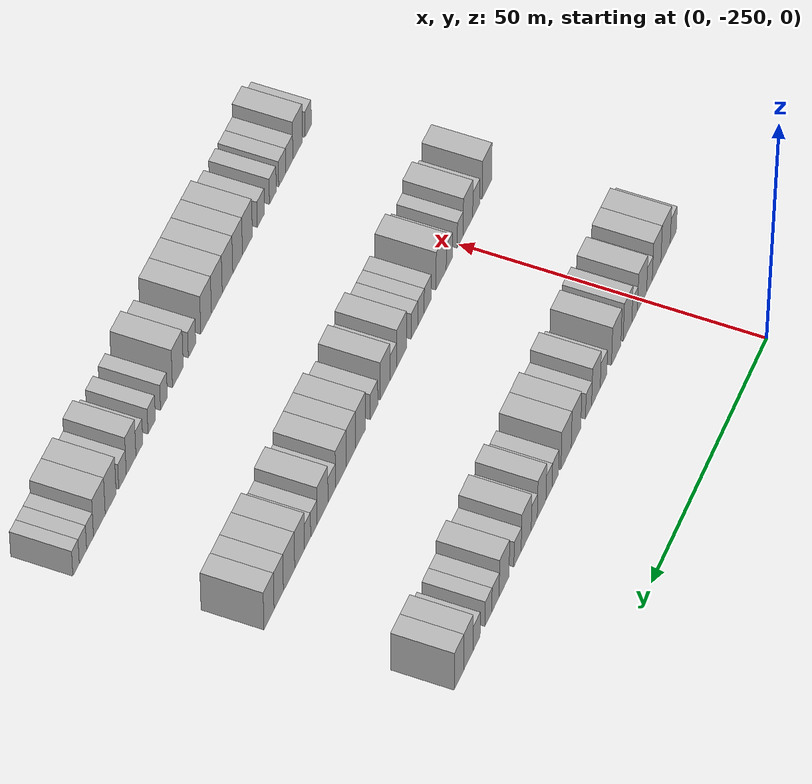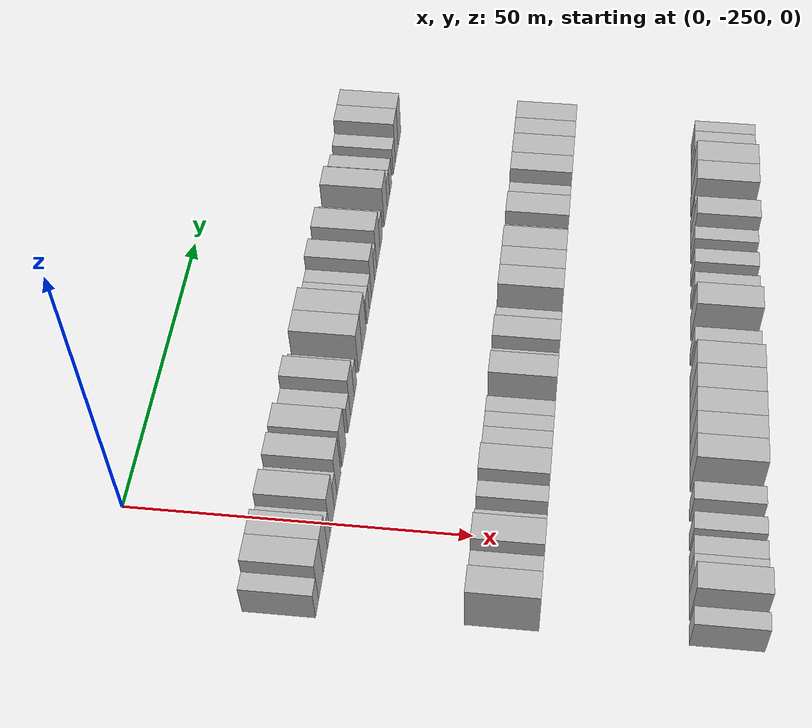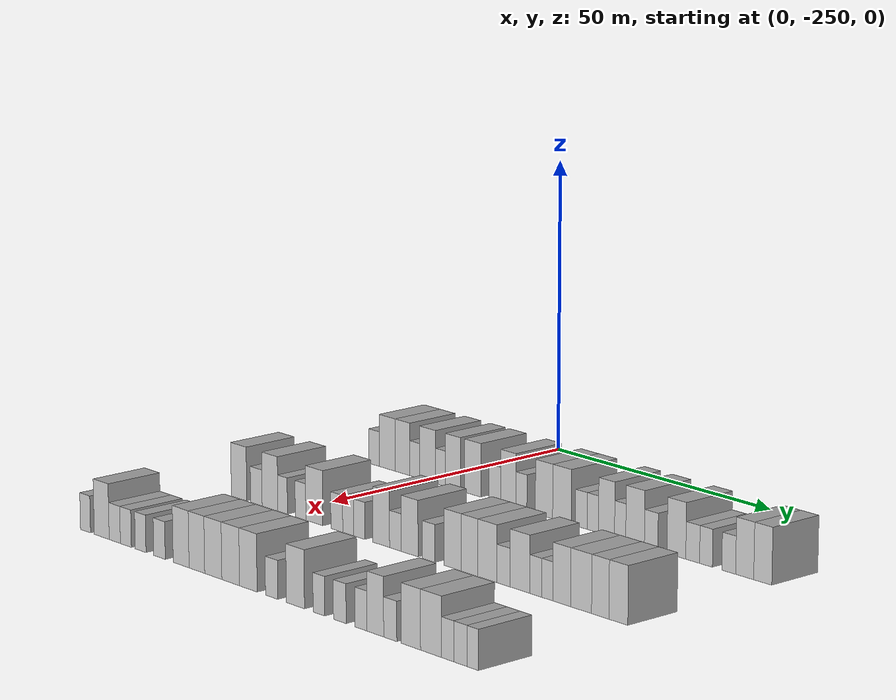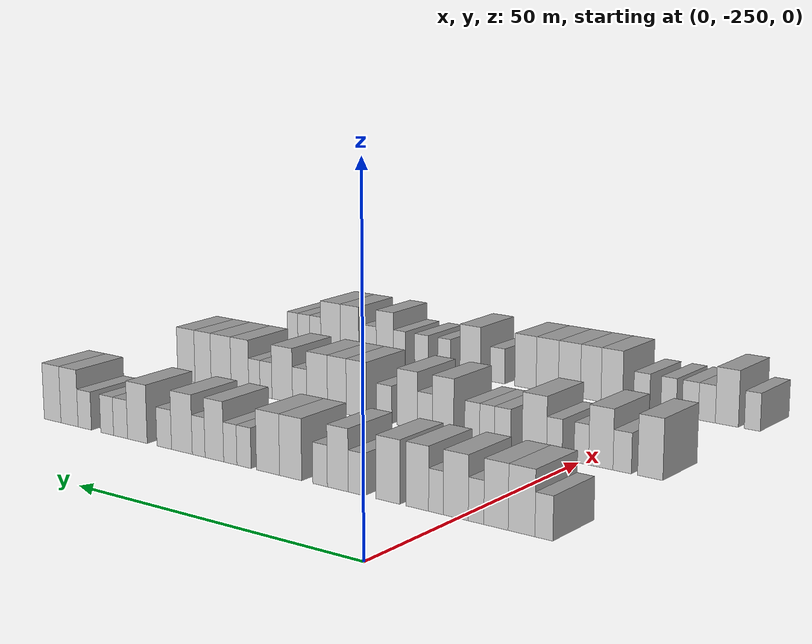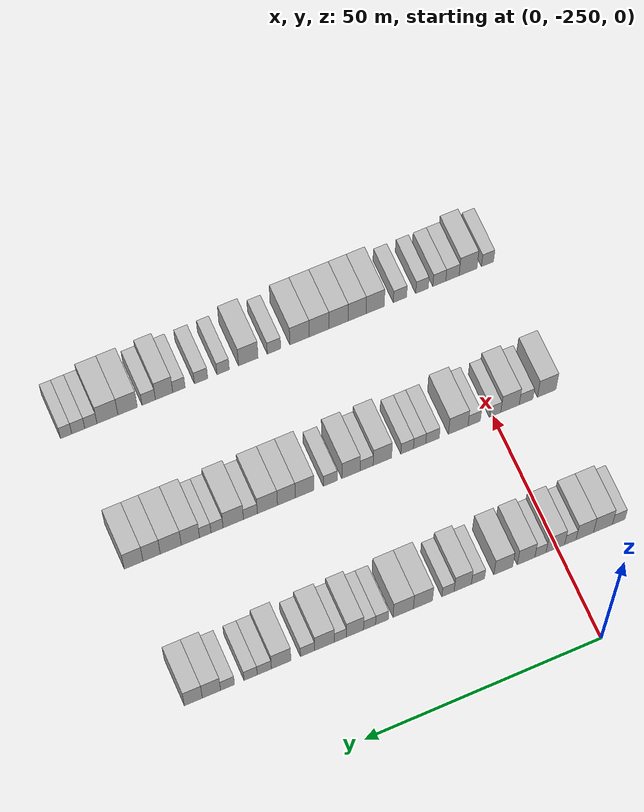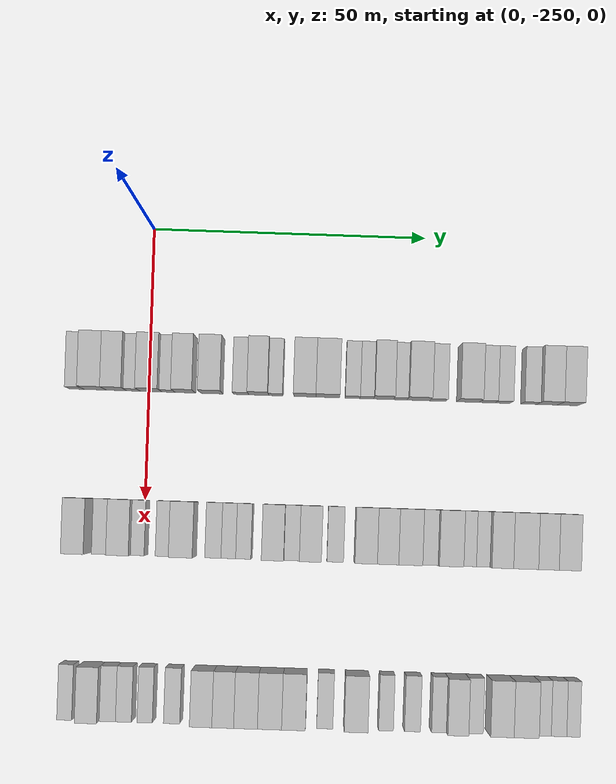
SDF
<sdf version="1.6">
 <world name="default">
  <model name="building_43">
   <static>1</static>
   <pose>25.0000 -263.2904 0 0.000000 0.000000 0.000000</pose>
   <link name="link">
    <pose>0 0 3.00 0 0 0</pose>
    <collision name="collision"><geometry><box><size>10.0000 2.6990 6.0000</size></box></geometry></collision>
    <visual name="visual">
     <cast_shadows>0</cast_shadows>
     <geometry><box><size>10.0000 2.6990 6.0000</size></box></geometry>
     <material>
      <script>
       <uri>model://HANNAS_wall/materials/scripts</uri>
       <uri>model://HANNAS_wall/materials/textures</uri>
       <name>vrc/HANNAS_wall</name>
      </script>
     </material>
    </visual>
   </link>
  </model>
  <model name="building_44">
   <static>1</static>
   <pose>25.0000 -259.8911 0 0.000000 0.000000 0.000000</pose>
   <link name="link">
    <pose>0 0 4.50 0 0 0</pose>
    <collision name="collision"><geometry><box><size>10.0000 4.0995 9.0000</size></box></geometry></collision>
    <visual name="visual">
     <cast_shadows>0</cast_shadows>
     <geometry><box><size>10.0000 4.0995 9.0000</size></box></geometry>
     <material>
      <script>
       <uri>model://HANNAS_wall/materials/scripts</uri>
       <uri>model://HANNAS_wall/materials/textures</uri>
       <name>vrc/HANNAS_wall</name>
      </script>
     </material>
    </visual>
   </link>
  </model>
  <model name="building_45">
   <static>1</static>
   <pose>25.0000 -255.9465 0 0.000000 0.000000 0.000000</pose>
   <link name="link">
    <pose>0 0 4.50 0 0 0</pose>
    <collision name="collision"><geometry><box><size>10.0000 3.7897 9.0000</size></box></geometry></collision>
    <visual name="visual">
     <cast_shadows>0</cast_shadows>
     <geometry><box><size>10.0000 3.7897 9.0000</size></box></geometry>
     <material>
      <script>
       <uri>model://HANNAS_wall/materials/scripts</uri>
       <uri>model://HANNAS_wall/materials/textures</uri>
       <name>vrc/HANNAS_wall</name>
      </script>
     </material>
    </visual>
   </link>
  </model>
  <model name="building_46">
   <static>1</static>
   <pose>25.0000 -252.8218 0 0.000000 0.000000 0.000000</pose>
   <link name="link">
    <pose>0 0 3.00 0 0 0</pose>
    <collision name="collision"><geometry><box><size>10.0000 2.4597 6.0000</size></box></geometry></collision>
    <visual name="visual">
     <cast_shadows>0</cast_shadows>
     <geometry><box><size>10.0000 2.4597 6.0000</size></box></geometry>
     <material>
      <script>
       <uri>model://HANNAS_wall/materials/scripts</uri>
       <uri>model://HANNAS_wall/materials/textures</uri>
       <name>vrc/HANNAS_wall</name>
      </script>
     </material>
    </visual>
   </link>
  </model>
  <model name="building_47">
   <static>1</static>
   <pose>25.0000 -249.5862 0 0.000000 0.000000 0.000000</pose>
   <link name="link">
    <pose>0 0 4.50 0 0 0</pose>
    <collision name="collision"><geometry><box><size>10.0000 4.0114 9.0000</size></box></geometry></collision>
    <visual name="visual">
     <cast_shadows>0</cast_shadows>
     <geometry><box><size>10.0000 4.0114 9.0000</size></box></geometry>
     <material>
      <script>
       <uri>model://HANNAS_wall/materials/scripts</uri>
       <uri>model://HANNAS_wall/materials/textures</uri>
       <name>vrc/HANNAS_wall</name>
      </script>
     </material>
    </visual>
   </link>
  </model>
  <model name="building_48">
   <static>1</static>
   <pose>25.0000 -246.3755 0 0.000000 0.000000 0.000000</pose>
   <link name="link">
    <pose>0 0 3.00 0 0 0</pose>
    <collision name="collision"><geometry><box><size>10.0000 2.4101 6.0000</size></box></geometry></collision>
    <visual name="visual">
     <cast_shadows>0</cast_shadows>
     <geometry><box><size>10.0000 2.4101 6.0000</size></box></geometry>
     <material>
      <script>
       <uri>model://HANNAS_wall/materials/scripts</uri>
       <uri>model://HANNAS_wall/materials/textures</uri>
       <name>vrc/HANNAS_wall</name>
      </script>
     </material>
    </visual>
   </link>
  </model>
  <model name="building_49">
   <static>1</static>
   <pose>25.0000 -243.2896 0 0.000000 0.000000 0.000000</pose>
   <link name="link">
    <pose>0 0 4.50 0 0 0</pose>
    <collision name="collision"><geometry><box><size>10.0000 3.7618 9.0000</size></box></geometry></collision>
    <visual name="visual">
     <cast_shadows>0</cast_shadows>
     <geometry><box><size>10.0000 3.7618 9.0000</size></box></geometry>
     <material>
      <script>
       <uri>model://HANNAS_wall/materials/scripts</uri>
       <uri>model://HANNAS_wall/materials/textures</uri>
       <name>vrc/HANNAS_wall</name>
      </script>
     </material>
    </visual>
   </link>
  </model>
  <model name="building_50">
   <static>1</static>
   <pose>25.0000 -238.3933 0 0.000000 0.000000 0.000000</pose>
   <link name="link">
    <pose>0 0 4.50 0 0 0</pose>
    <collision name="collision"><geometry><box><size>10.0000 4.0307 9.0000</size></box></geometry></collision>
    <visual name="visual">
     <cast_shadows>0</cast_shadows>
     <geometry><box><size>10.0000 4.0307 9.0000</size></box></geometry>
     <material>
      <script>
       <uri>model://HANNAS_wall/materials/scripts</uri>
       <uri>model://HANNAS_wall/materials/textures</uri>
       <name>vrc/HANNAS_wall</name>
      </script>
     </material>
    </visual>
   </link>
  </model>
  <model name="building_51">
   <static>1</static>
   <pose>25.0000 -232.9716 0 0.000000 0.000000 0.000000</pose>
   <link name="link">
    <pose>0 0 3.00 0 0 0</pose>
    <collision name="collision"><geometry><box><size>10.0000 2.8127 6.0000</size></box></geometry></collision>
    <visual name="visual">
     <cast_shadows>0</cast_shadows>
     <geometry><box><size>10.0000 2.8127 6.0000</size></box></geometry>
     <material>
      <script>
       <uri>model://HANNAS_wall/materials/scripts</uri>
       <uri>model://HANNAS_wall/materials/textures</uri>
       <name>vrc/HANNAS_wall</name>
      </script>
     </material>
    </visual>
   </link>
  </model>
  <model name="building_52">
   <static>1</static>
   <pose>25.0000 -229.7193 0 0.000000 0.000000 0.000000</pose>
   <link name="link">
    <pose>0 0 4.50 0 0 0</pose>
    <collision name="collision"><geometry><box><size>10.0000 3.6919 9.0000</size></box></geometry></collision>
    <visual name="visual">
     <cast_shadows>0</cast_shadows>
     <geometry><box><size>10.0000 3.6919 9.0000</size></box></geometry>
     <material>
      <script>
       <uri>model://HANNAS_wall/materials/scripts</uri>
       <uri>model://HANNAS_wall/materials/textures</uri>
       <name>vrc/HANNAS_wall</name>
      </script>
     </material>
    </visual>
   </link>
  </model>
  <model name="building_53">
   <static>1</static>
   <pose>25.0000 -226.5765 0 0.000000 0.000000 0.000000</pose>
   <link name="link">
    <pose>0 0 3.00 0 0 0</pose>
    <collision name="collision"><geometry><box><size>10.0000 2.5938 6.0000</size></box></geometry></collision>
    <visual name="visual">
     <cast_shadows>0</cast_shadows>
     <geometry><box><size>10.0000 2.5938 6.0000</size></box></geometry>
     <material>
      <script>
       <uri>model://HANNAS_wall/materials/scripts</uri>
       <uri>model://HANNAS_wall/materials/textures</uri>
       <name>vrc/HANNAS_wall</name>
      </script>
     </material>
    </visual>
   </link>
  </model>
  <model name="building_54">
   <static>1</static>
   <pose>25.0000 -221.2471 0 0.000000 0.000000 0.000000</pose>
   <link name="link">
    <pose>0 0 4.50 0 0 0</pose>
    <collision name="collision"><geometry><box><size>10.0000 4.0650 9.0000</size></box></geometry></collision>
    <visual name="visual">
     <cast_shadows>0</cast_shadows>
     <geometry><box><size>10.0000 4.0650 9.0000</size></box></geometry>
     <material>
      <script>
       <uri>model://HANNAS_wall/materials/scripts</uri>
       <uri>model://HANNAS_wall/materials/textures</uri>
       <name>vrc/HANNAS_wall</name>
      </script>
     </material>
    </visual>
   </link>
  </model>
  <model name="building_55">
   <static>1</static>
   <pose>25.0000 -217.0560 0 0.000000 0.000000 0.000000</pose>
   <link name="link">
    <pose>0 0 4.50 0 0 0</pose>
    <collision name="collision"><geometry><box><size>10.0000 4.3171 9.0000</size></box></geometry></collision>
    <visual name="visual">
     <cast_shadows>0</cast_shadows>
     <geometry><box><size>10.0000 4.3171 9.0000</size></box></geometry>
     <material>
      <script>
       <uri>model://HANNAS_wall/materials/scripts</uri>
       <uri>model://HANNAS_wall/materials/textures</uri>
       <name>vrc/HANNAS_wall</name>
      </script>
     </material>
    </visual>
   </link>
  </model>
  <model name="building_56">
   <static>1</static>
   <pose>25.0000 -212.5392 0 0.000000 0.000000 0.000000</pose>
   <link name="link">
    <pose>0 0 3.00 0 0 0</pose>
    <collision name="collision"><geometry><box><size>10.0000 2.7165 6.0000</size></box></geometry></collision>
    <visual name="visual">
     <cast_shadows>0</cast_shadows>
     <geometry><box><size>10.0000 2.7165 6.0000</size></box></geometry>
     <material>
      <script>
       <uri>model://HANNAS_wall/materials/scripts</uri>
       <uri>model://HANNAS_wall/materials/textures</uri>
       <name>vrc/HANNAS_wall</name>
      </script>
     </material>
    </visual>
   </link>
  </model>
  <model name="building_57">
   <static>1</static>
   <pose>25.0000 -209.9086 0 0.000000 0.000000 0.000000</pose>
   <link name="link">
    <pose>0 0 3.00 0 0 0</pose>
    <collision name="collision"><geometry><box><size>10.0000 2.5447 6.0000</size></box></geometry></collision>
    <visual name="visual">
     <cast_shadows>0</cast_shadows>
     <geometry><box><size>10.0000 2.5447 6.0000</size></box></geometry>
     <material>
      <script>
       <uri>model://HANNAS_wall/materials/scripts</uri>
       <uri>model://HANNAS_wall/materials/textures</uri>
       <name>vrc/HANNAS_wall</name>
      </script>
     </material>
    </visual>
   </link>
  </model>
  <model name="building_58">
   <static>1</static>
   <pose>25.0000 -206.8142 0 0.000000 0.000000 0.000000</pose>
   <link name="link">
    <pose>0 0 4.50 0 0 0</pose>
    <collision name="collision"><geometry><box><size>10.0000 3.6443 9.0000</size></box></geometry></collision>
    <visual name="visual">
     <cast_shadows>0</cast_shadows>
     <geometry><box><size>10.0000 3.6443 9.0000</size></box></geometry>
     <material>
      <script>
       <uri>model://HANNAS_wall/materials/scripts</uri>
       <uri>model://HANNAS_wall/materials/textures</uri>
       <name>vrc/HANNAS_wall</name>
      </script>
     </material>
    </visual>
   </link>
  </model>
  <model name="building_59">
   <static>1</static>
   <pose>25.0000 -203.7304 0 0.000000 0.000000 0.000000</pose>
   <link name="link">
    <pose>0 0 3.00 0 0 0</pose>
    <collision name="collision"><geometry><box><size>10.0000 2.5232 6.0000</size></box></geometry></collision>
    <visual name="visual">
     <cast_shadows>0</cast_shadows>
     <geometry><box><size>10.0000 2.5232 6.0000</size></box></geometry>
     <material>
      <script>
       <uri>model://HANNAS_wall/materials/scripts</uri>
       <uri>model://HANNAS_wall/materials/textures</uri>
       <name>vrc/HANNAS_wall</name>
      </script>
     </material>
    </visual>
   </link>
  </model>
  <model name="building_60">
   <static>1</static>
   <pose>25.0000 -200.3900 0 0.000000 0.000000 0.000000</pose>
   <link name="link">
    <pose>0 0 4.50 0 0 0</pose>
    <collision name="collision"><geometry><box><size>10.0000 4.1576 9.0000</size></box></geometry></collision>
    <visual name="visual">
     <cast_shadows>0</cast_shadows>
     <geometry><box><size>10.0000 4.1576 9.0000</size></box></geometry>
     <material>
      <script>
       <uri>model://HANNAS_wall/materials/scripts</uri>
       <uri>model://HANNAS_wall/materials/textures</uri>
       <name>vrc/HANNAS_wall</name>
      </script>
     </material>
    </visual>
   </link>
  </model>
  <model name="building_61">
   <static>1</static>
   <pose>25.0000 -196.8162 0 0.000000 0.000000 0.000000</pose>
   <link name="link">
    <pose>0 0 3.00 0 0 0</pose>
    <collision name="collision"><geometry><box><size>10.0000 2.9900 6.0000</size></box></geometry></collision>
    <visual name="visual">
     <cast_shadows>0</cast_shadows>
     <geometry><box><size>10.0000 2.9900 6.0000</size></box></geometry>
     <material>
      <script>
       <uri>model://HANNAS_wall/materials/scripts</uri>
       <uri>model://HANNAS_wall/materials/textures</uri>
       <name>vrc/HANNAS_wall</name>
      </script>
     </material>
    </visual>
   </link>
  </model>
  <model name="building_62">
   <static>1</static>
   <pose>25.0000 -191.2782 0 0.000000 0.000000 0.000000</pose>
   <link name="link">
    <pose>0 0 4.50 0 0 0</pose>
    <collision name="collision"><geometry><box><size>10.0000 4.0861 9.0000</size></box></geometry></collision>
    <visual name="visual">
     <cast_shadows>0</cast_shadows>
     <geometry><box><size>10.0000 4.0861 9.0000</size></box></geometry>
     <material>
      <script>
       <uri>model://HANNAS_wall/materials/scripts</uri>
       <uri>model://HANNAS_wall/materials/textures</uri>
       <name>vrc/HANNAS_wall</name>
      </script>
     </material>
    </visual>
   </link>
  </model>
  <model name="building_63">
   <static>1</static>
   <pose>25.0000 -187.7467 0 0.000000 0.000000 0.000000</pose>
   <link name="link">
    <pose>0 0 3.00 0 0 0</pose>
    <collision name="collision"><geometry><box><size>10.0000 2.9769 6.0000</size></box></geometry></collision>
    <visual name="visual">
     <cast_shadows>0</cast_shadows>
     <geometry><box><size>10.0000 2.9769 6.0000</size></box></geometry>
     <material>
      <script>
       <uri>model://HANNAS_wall/materials/scripts</uri>
       <uri>model://HANNAS_wall/materials/textures</uri>
       <name>vrc/HANNAS_wall</name>
      </script>
     </material>
    </visual>
   </link>
  </model>
  <model name="building_64">
   <static>1</static>
   <pose>25.0000 -184.8813 0 0.000000 0.000000 0.000000</pose>
   <link name="link">
    <pose>0 0 3.00 0 0 0</pose>
    <collision name="collision"><geometry><box><size>10.0000 2.7538 6.0000</size></box></geometry></collision>
    <visual name="visual">
     <cast_shadows>0</cast_shadows>
     <geometry><box><size>10.0000 2.7538 6.0000</size></box></geometry>
     <material>
      <script>
       <uri>model://HANNAS_wall/materials/scripts</uri>
       <uri>model://HANNAS_wall/materials/textures</uri>
       <name>vrc/HANNAS_wall</name>
      </script>
     </material>
    </visual>
   </link>
  </model>
  <model name="building_65">
   <static>1</static>
   <pose>25.0000 -180.0469 0 0.000000 0.000000 0.000000</pose>
   <link name="link">
    <pose>0 0 3.00 0 0 0</pose>
    <collision name="collision"><geometry><box><size>10.0000 2.9151 6.0000</size></box></geometry></collision>
    <visual name="visual">
     <cast_shadows>0</cast_shadows>
     <geometry><box><size>10.0000 2.9151 6.0000</size></box></geometry>
     <material>
      <script>
       <uri>model://HANNAS_wall/materials/scripts</uri>
       <uri>model://HANNAS_wall/materials/textures</uri>
       <name>vrc/HANNAS_wall</name>
      </script>
     </material>
    </visual>
   </link>
  </model>
  <model name="building_66">
   <static>1</static>
   <pose>25.0000 -176.6911 0 0.000000 0.000000 0.000000</pose>
   <link name="link">
    <pose>0 0 4.50 0 0 0</pose>
    <collision name="collision"><geometry><box><size>10.0000 3.7965 9.0000</size></box></geometry></collision>
    <visual name="visual">
     <cast_shadows>0</cast_shadows>
     <geometry><box><size>10.0000 3.7965 9.0000</size></box></geometry>
     <material>
      <script>
       <uri>model://HANNAS_wall/materials/scripts</uri>
       <uri>model://HANNAS_wall/materials/textures</uri>
       <name>vrc/HANNAS_wall</name>
      </script>
     </material>
    </visual>
   </link>
  </model>
  <model name="building_67">
   <static>1</static>
   <pose>25.0000 -172.9130 0 0.000000 0.000000 0.000000</pose>
   <link name="link">
    <pose>0 0 4.50 0 0 0</pose>
    <collision name="collision"><geometry><box><size>10.0000 3.7597 9.0000</size></box></geometry></collision>
    <visual name="visual">
     <cast_shadows>0</cast_shadows>
     <geometry><box><size>10.0000 3.7597 9.0000</size></box></geometry>
     <material>
      <script>
       <uri>model://HANNAS_wall/materials/scripts</uri>
       <uri>model://HANNAS_wall/materials/textures</uri>
       <name>vrc/HANNAS_wall</name>
      </script>
     </material>
    </visual>
   </link>
  </model>
  <model name="building_279">
   <static>1</static>
   <pose>55.0000 -261.7313 0 0.000000 0.000000 0.000000</pose>
   <link name="link">
    <pose>0 0 4.50 0 0 0</pose>
    <collision name="collision"><geometry><box><size>10.0000 4.0463 9.0000</size></box></geometry></collision>
    <visual name="visual">
     <cast_shadows>0</cast_shadows>
     <geometry><box><size>10.0000 4.0463 9.0000</size></box></geometry>
     <material>
      <script>
       <uri>model://HANNAS_wall/materials/scripts</uri>
       <uri>model://HANNAS_wall/materials/textures</uri>
       <name>vrc/HANNAS_wall</name>
      </script>
     </material>
    </visual>
   </link>
  </model>
  <model name="building_280">
   <static>1</static>
   <pose>55.0000 -257.2091 0 0.000000 0.000000 0.000000</pose>
   <link name="link">
    <pose>0 0 3.00 0 0 0</pose>
    <collision name="collision"><geometry><box><size>10.0000 2.9983 6.0000</size></box></geometry></collision>
    <visual name="visual">
     <cast_shadows>0</cast_shadows>
     <geometry><box><size>10.0000 2.9983 6.0000</size></box></geometry>
     <material>
      <script>
       <uri>model://HANNAS_wall/materials/scripts</uri>
       <uri>model://HANNAS_wall/materials/textures</uri>
       <name>vrc/HANNAS_wall</name>
      </script>
     </material>
    </visual>
   </link>
  </model>
  <model name="building_281">
   <static>1</static>
   <pose>55.0000 -253.6927 0 0.000000 0.000000 0.000000</pose>
   <link name="link">
    <pose>0 0 4.50 0 0 0</pose>
    <collision name="collision"><geometry><box><size>10.0000 4.0344 9.0000</size></box></geometry></collision>
    <visual name="visual">
     <cast_shadows>0</cast_shadows>
     <geometry><box><size>10.0000 4.0344 9.0000</size></box></geometry>
     <material>
      <script>
       <uri>model://HANNAS_wall/materials/scripts</uri>
       <uri>model://HANNAS_wall/materials/textures</uri>
       <name>vrc/HANNAS_wall</name>
      </script>
     </material>
    </visual>
   </link>
  </model>
  <model name="building_282">
   <static>1</static>
   <pose>55.0000 -250.4447 0 0.000000 0.000000 0.000000</pose>
   <link name="link">
    <pose>0 0 3.00 0 0 0</pose>
    <collision name="collision"><geometry><box><size>10.0000 2.4617 6.0000</size></box></geometry></collision>
    <visual name="visual">
     <cast_shadows>0</cast_shadows>
     <geometry><box><size>10.0000 2.4617 6.0000</size></box></geometry>
     <material>
      <script>
       <uri>model://HANNAS_wall/materials/scripts</uri>
       <uri>model://HANNAS_wall/materials/textures</uri>
       <name>vrc/HANNAS_wall</name>
      </script>
     </material>
    </visual>
   </link>
  </model>
  <model name="building_283">
   <static>1</static>
   <pose>55.0000 -245.8779 0 0.000000 0.000000 0.000000</pose>
   <link name="link">
    <pose>0 0 3.00 0 0 0</pose>
    <collision name="collision"><geometry><box><size>10.0000 2.6719 6.0000</size></box></geometry></collision>
    <visual name="visual">
     <cast_shadows>0</cast_shadows>
     <geometry><box><size>10.0000 2.6719 6.0000</size></box></geometry>
     <material>
      <script>
       <uri>model://HANNAS_wall/materials/scripts</uri>
       <uri>model://HANNAS_wall/materials/textures</uri>
       <name>vrc/HANNAS_wall</name>
      </script>
     </material>
    </visual>
   </link>
  </model>
  <model name="building_284">
   <static>1</static>
   <pose>55.0000 -242.4157 0 0.000000 0.000000 0.000000</pose>
   <link name="link">
    <pose>0 0 4.50 0 0 0</pose>
    <collision name="collision"><geometry><box><size>10.0000 4.2525 9.0000</size></box></geometry></collision>
    <visual name="visual">
     <cast_shadows>0</cast_shadows>
     <geometry><box><size>10.0000 4.2525 9.0000</size></box></geometry>
     <material>
      <script>
       <uri>model://HANNAS_wall/materials/scripts</uri>
       <uri>model://HANNAS_wall/materials/textures</uri>
       <name>vrc/HANNAS_wall</name>
      </script>
     </material>
    </visual>
   </link>
  </model>
  <model name="building_285">
   <static>1</static>
   <pose>55.0000 -236.8250 0 0.000000 0.000000 0.000000</pose>
   <link name="link">
    <pose>0 0 3.00 0 0 0</pose>
    <collision name="collision"><geometry><box><size>10.0000 2.9289 6.0000</size></box></geometry></collision>
    <visual name="visual">
     <cast_shadows>0</cast_shadows>
     <geometry><box><size>10.0000 2.9289 6.0000</size></box></geometry>
     <material>
      <script>
       <uri>model://HANNAS_wall/materials/scripts</uri>
       <uri>model://HANNAS_wall/materials/textures</uri>
       <name>vrc/HANNAS_wall</name>
      </script>
     </material>
    </visual>
   </link>
  </model>
  <model name="building_286">
   <static>1</static>
   <pose>55.0000 -234.0366 0 0.000000 0.000000 0.000000</pose>
   <link name="link">
    <pose>0 0 3.00 0 0 0</pose>
    <collision name="collision"><geometry><box><size>10.0000 2.6480 6.0000</size></box></geometry></collision>
    <visual name="visual">
     <cast_shadows>0</cast_shadows>
     <geometry><box><size>10.0000 2.6480 6.0000</size></box></geometry>
     <material>
      <script>
       <uri>model://HANNAS_wall/materials/scripts</uri>
       <uri>model://HANNAS_wall/materials/textures</uri>
       <name>vrc/HANNAS_wall</name>
      </script>
     </material>
    </visual>
   </link>
  </model>
  <model name="building_287">
   <static>1</static>
   <pose>55.0000 -231.3471 0 0.000000 0.000000 0.000000</pose>
   <link name="link">
    <pose>0 0 3.00 0 0 0</pose>
    <collision name="collision"><geometry><box><size>10.0000 2.7309 6.0000</size></box></geometry></collision>
    <visual name="visual">
     <cast_shadows>0</cast_shadows>
     <geometry><box><size>10.0000 2.7309 6.0000</size></box></geometry>
     <material>
      <script>
       <uri>model://HANNAS_wall/materials/scripts</uri>
       <uri>model://HANNAS_wall/materials/textures</uri>
       <name>vrc/HANNAS_wall</name>
      </script>
     </material>
    </visual>
   </link>
  </model>
  <model name="building_288">
   <static>1</static>
   <pose>55.0000 -225.9937 0 0.000000 0.000000 0.000000</pose>
   <link name="link">
    <pose>0 0 4.50 0 0 0</pose>
    <collision name="collision"><geometry><box><size>10.0000 3.9758 9.0000</size></box></geometry></collision>
    <visual name="visual">
     <cast_shadows>0</cast_shadows>
     <geometry><box><size>10.0000 3.9758 9.0000</size></box></geometry>
     <material>
      <script>
       <uri>model://HANNAS_wall/materials/scripts</uri>
       <uri>model://HANNAS_wall/materials/textures</uri>
       <name>vrc/HANNAS_wall</name>
      </script>
     </material>
    </visual>
   </link>
  </model>
  <model name="building_289">
   <static>1</static>
   <pose>55.0000 -222.6049 0 0.000000 0.000000 0.000000</pose>
   <link name="link">
    <pose>0 0 3.00 0 0 0</pose>
    <collision name="collision"><geometry><box><size>10.0000 2.8018 6.0000</size></box></geometry></collision>
    <visual name="visual">
     <cast_shadows>0</cast_shadows>
     <geometry><box><size>10.0000 2.8018 6.0000</size></box></geometry>
     <material>
      <script>
       <uri>model://HANNAS_wall/materials/scripts</uri>
       <uri>model://HANNAS_wall/materials/textures</uri>
       <name>vrc/HANNAS_wall</name>
      </script>
     </material>
    </visual>
   </link>
  </model>
  <model name="building_290">
   <static>1</static>
   <pose>55.0000 -219.2361 0 0.000000 0.000000 0.000000</pose>
   <link name="link">
    <pose>0 0 4.50 0 0 0</pose>
    <collision name="collision"><geometry><box><size>10.0000 3.9359 9.0000</size></box></geometry></collision>
    <visual name="visual">
     <cast_shadows>0</cast_shadows>
     <geometry><box><size>10.0000 3.9359 9.0000</size></box></geometry>
     <material>
      <script>
       <uri>model://HANNAS_wall/materials/scripts</uri>
       <uri>model://HANNAS_wall/materials/textures</uri>
       <name>vrc/HANNAS_wall</name>
      </script>
     </material>
    </visual>
   </link>
  </model>
  <model name="building_291">
   <static>1</static>
   <pose>55.0000 -214.7717 0 0.000000 0.000000 0.000000</pose>
   <link name="link">
    <pose>0 0 3.00 0 0 0</pose>
    <collision name="collision"><geometry><box><size>10.0000 2.9929 6.0000</size></box></geometry></collision>
    <visual name="visual">
     <cast_shadows>0</cast_shadows>
     <geometry><box><size>10.0000 2.9929 6.0000</size></box></geometry>
     <material>
      <script>
       <uri>model://HANNAS_wall/materials/scripts</uri>
       <uri>model://HANNAS_wall/materials/textures</uri>
       <name>vrc/HANNAS_wall</name>
      </script>
     </material>
    </visual>
   </link>
  </model>
  <model name="building_292">
   <static>1</static>
   <pose>55.0000 -209.2794 0 0.000000 0.000000 0.000000</pose>
   <link name="link">
    <pose>0 0 4.50 0 0 0</pose>
    <collision name="collision"><geometry><box><size>10.0000 3.9916 9.0000</size></box></geometry></collision>
    <visual name="visual">
     <cast_shadows>0</cast_shadows>
     <geometry><box><size>10.0000 3.9916 9.0000</size></box></geometry>
     <material>
      <script>
       <uri>model://HANNAS_wall/materials/scripts</uri>
       <uri>model://HANNAS_wall/materials/textures</uri>
       <name>vrc/HANNAS_wall</name>
      </script>
     </material>
    </visual>
   </link>
  </model>
  <model name="building_293">
   <static>1</static>
   <pose>55.0000 -205.3781 0 0.000000 0.000000 0.000000</pose>
   <link name="link">
    <pose>0 0 4.50 0 0 0</pose>
    <collision name="collision"><geometry><box><size>10.0000 3.8110 9.0000</size></box></geometry></collision>
    <visual name="visual">
     <cast_shadows>0</cast_shadows>
     <geometry><box><size>10.0000 3.8110 9.0000</size></box></geometry>
     <material>
      <script>
       <uri>model://HANNAS_wall/materials/scripts</uri>
       <uri>model://HANNAS_wall/materials/textures</uri>
       <name>vrc/HANNAS_wall</name>
      </script>
     </material>
    </visual>
   </link>
  </model>
  <model name="building_294">
   <static>1</static>
   <pose>55.0000 -201.3325 0 0.000000 0.000000 0.000000</pose>
   <link name="link">
    <pose>0 0 4.50 0 0 0</pose>
    <collision name="collision"><geometry><box><size>10.0000 4.2802 9.0000</size></box></geometry></collision>
    <visual name="visual">
     <cast_shadows>0</cast_shadows>
     <geometry><box><size>10.0000 4.2802 9.0000</size></box></geometry>
     <material>
      <script>
       <uri>model://HANNAS_wall/materials/scripts</uri>
       <uri>model://HANNAS_wall/materials/textures</uri>
       <name>vrc/HANNAS_wall</name>
      </script>
     </material>
    </visual>
   </link>
  </model>
  <model name="building_295">
   <static>1</static>
   <pose>55.0000 -197.7078 0 0.000000 0.000000 0.000000</pose>
   <link name="link">
    <pose>0 0 3.00 0 0 0</pose>
    <collision name="collision"><geometry><box><size>10.0000 2.9692 6.0000</size></box></geometry></collision>
    <visual name="visual">
     <cast_shadows>0</cast_shadows>
     <geometry><box><size>10.0000 2.9692 6.0000</size></box></geometry>
     <material>
      <script>
       <uri>model://HANNAS_wall/materials/scripts</uri>
       <uri>model://HANNAS_wall/materials/textures</uri>
       <name>vrc/HANNAS_wall</name>
      </script>
     </material>
    </visual>
   </link>
  </model>
  <model name="building_296">
   <static>1</static>
   <pose>55.0000 -194.0513 0 0.000000 0.000000 0.000000</pose>
   <link name="link">
    <pose>0 0 4.50 0 0 0</pose>
    <collision name="collision"><geometry><box><size>10.0000 4.3437 9.0000</size></box></geometry></collision>
    <visual name="visual">
     <cast_shadows>0</cast_shadows>
     <geometry><box><size>10.0000 4.3437 9.0000</size></box></geometry>
     <material>
      <script>
       <uri>model://HANNAS_wall/materials/scripts</uri>
       <uri>model://HANNAS_wall/materials/textures</uri>
       <name>vrc/HANNAS_wall</name>
      </script>
     </material>
    </visual>
   </link>
  </model>
  <model name="building_297">
   <static>1</static>
   <pose>55.0000 -190.6006 0 0.000000 0.000000 0.000000</pose>
   <link name="link">
    <pose>0 0 3.00 0 0 0</pose>
    <collision name="collision"><geometry><box><size>10.0000 2.5578 6.0000</size></box></geometry></collision>
    <visual name="visual">
     <cast_shadows>0</cast_shadows>
     <geometry><box><size>10.0000 2.5578 6.0000</size></box></geometry>
     <material>
      <script>
       <uri>model://HANNAS_wall/materials/scripts</uri>
       <uri>model://HANNAS_wall/materials/textures</uri>
       <name>vrc/HANNAS_wall</name>
      </script>
     </material>
    </visual>
   </link>
  </model>
  <model name="building_298">
   <static>1</static>
   <pose>55.0000 -188.0984 0 0.000000 0.000000 0.000000</pose>
   <link name="link">
    <pose>0 0 3.00 0 0 0</pose>
    <collision name="collision"><geometry><box><size>10.0000 2.4465 6.0000</size></box></geometry></collision>
    <visual name="visual">
     <cast_shadows>0</cast_shadows>
     <geometry><box><size>10.0000 2.4465 6.0000</size></box></geometry>
     <material>
      <script>
       <uri>model://HANNAS_wall/materials/scripts</uri>
       <uri>model://HANNAS_wall/materials/textures</uri>
       <name>vrc/HANNAS_wall</name>
      </script>
     </material>
    </visual>
   </link>
  </model>
  <model name="building_299">
   <static>1</static>
   <pose>55.0000 -184.9438 0 0.000000 0.000000 0.000000</pose>
   <link name="link">
    <pose>0 0 4.50 0 0 0</pose>
    <collision name="collision"><geometry><box><size>10.0000 3.8627 9.0000</size></box></geometry></collision>
    <visual name="visual">
     <cast_shadows>0</cast_shadows>
     <geometry><box><size>10.0000 3.8627 9.0000</size></box></geometry>
     <material>
      <script>
       <uri>model://HANNAS_wall/materials/scripts</uri>
       <uri>model://HANNAS_wall/materials/textures</uri>
       <name>vrc/HANNAS_wall</name>
      </script>
     </material>
    </visual>
   </link>
  </model>
  <model name="building_300">
   <static>1</static>
   <pose>55.0000 -180.7879 0 0.000000 0.000000 0.000000</pose>
   <link name="link">
    <pose>0 0 4.50 0 0 0</pose>
    <collision name="collision"><geometry><box><size>10.0000 4.4491 9.0000</size></box></geometry></collision>
    <visual name="visual">
     <cast_shadows>0</cast_shadows>
     <geometry><box><size>10.0000 4.4491 9.0000</size></box></geometry>
     <material>
      <script>
       <uri>model://HANNAS_wall/materials/scripts</uri>
       <uri>model://HANNAS_wall/materials/textures</uri>
       <name>vrc/HANNAS_wall</name>
      </script>
     </material>
    </visual>
   </link>
  </model>
  <model name="building_301">
   <static>1</static>
   <pose>55.0000 -176.7367 0 0.000000 0.000000 0.000000</pose>
   <link name="link">
    <pose>0 0 4.50 0 0 0</pose>
    <collision name="collision"><geometry><box><size>10.0000 3.6533 9.0000</size></box></geometry></collision>
    <visual name="visual">
     <cast_shadows>0</cast_shadows>
     <geometry><box><size>10.0000 3.6533 9.0000</size></box></geometry>
     <material>
      <script>
       <uri>model://HANNAS_wall/materials/scripts</uri>
       <uri>model://HANNAS_wall/materials/textures</uri>
       <name>vrc/HANNAS_wall</name>
      </script>
     </material>
    </visual>
   </link>
  </model>
  <model name="building_302">
   <static>1</static>
   <pose>55.0000 -172.9309 0 0.000000 0.000000 0.000000</pose>
   <link name="link">
    <pose>0 0 4.50 0 0 0</pose>
    <collision name="collision"><geometry><box><size>10.0000 3.9583 9.0000</size></box></geometry></collision>
    <visual name="visual">
     <cast_shadows>0</cast_shadows>
     <geometry><box><size>10.0000 3.9583 9.0000</size></box></geometry>
     <material>
      <script>
       <uri>model://HANNAS_wall/materials/scripts</uri>
       <uri>model://HANNAS_wall/materials/textures</uri>
       <name>vrc/HANNAS_wall</name>
      </script>
     </material>
    </visual>
   </link>
  </model>
  <model name="building_496">
   <static>1</static>
   <pose>85.0000 -262.5612 0 0.000000 0.000000 0.000000</pose>
   <link name="link">
    <pose>0 0 3.00 0 0 0</pose>
    <collision name="collision"><geometry><box><size>10.0000 2.6796 6.0000</size></box></geometry></collision>
    <visual name="visual">
     <cast_shadows>0</cast_shadows>
     <geometry><box><size>10.0000 2.6796 6.0000</size></box></geometry>
     <material>
      <script>
       <uri>model://HANNAS_wall/materials/scripts</uri>
       <uri>model://HANNAS_wall/materials/textures</uri>
       <name>vrc/HANNAS_wall</name>
      </script>
     </material>
    </visual>
   </link>
  </model>
  <model name="building_497">
   <static>1</static>
   <pose>85.0000 -258.2481 0 0.000000 0.000000 0.000000</pose>
   <link name="link">
    <pose>0 0 4.50 0 0 0</pose>
    <collision name="collision"><geometry><box><size>10.0000 3.9467 9.0000</size></box></geometry></collision>
    <visual name="visual">
     <cast_shadows>0</cast_shadows>
     <geometry><box><size>10.0000 3.9467 9.0000</size></box></geometry>
     <material>
      <script>
       <uri>model://HANNAS_wall/materials/scripts</uri>
       <uri>model://HANNAS_wall/materials/textures</uri>
       <name>vrc/HANNAS_wall</name>
      </script>
     </material>
    </visual>
   </link>
  </model>
  <model name="building_498">
   <static>1</static>
   <pose>85.0000 -254.8065 0 0.000000 0.000000 0.000000</pose>
   <link name="link">
    <pose>0 0 3.00 0 0 0</pose>
    <collision name="collision"><geometry><box><size>10.0000 2.9365 6.0000</size></box></geometry></collision>
    <visual name="visual">
     <cast_shadows>0</cast_shadows>
     <geometry><box><size>10.0000 2.9365 6.0000</size></box></geometry>
     <material>
      <script>
       <uri>model://HANNAS_wall/materials/scripts</uri>
       <uri>model://HANNAS_wall/materials/textures</uri>
       <name>vrc/HANNAS_wall</name>
      </script>
     </material>
    </visual>
   </link>
  </model>
  <model name="building_499">
   <static>1</static>
   <pose>85.0000 -251.9012 0 0.000000 0.000000 0.000000</pose>
   <link name="link">
    <pose>0 0 3.00 0 0 0</pose>
    <collision name="collision"><geometry><box><size>10.0000 2.8739 6.0000</size></box></geometry></collision>
    <visual name="visual">
     <cast_shadows>0</cast_shadows>
     <geometry><box><size>10.0000 2.8739 6.0000</size></box></geometry>
     <material>
      <script>
       <uri>model://HANNAS_wall/materials/scripts</uri>
       <uri>model://HANNAS_wall/materials/textures</uri>
       <name>vrc/HANNAS_wall</name>
      </script>
     </material>
    </visual>
   </link>
  </model>
  <model name="building_500">
   <static>1</static>
   <pose>85.0000 -248.0786 0 0.000000 0.000000 0.000000</pose>
   <link name="link">
    <pose>0 0 3.00 0 0 0</pose>
    <collision name="collision"><geometry><box><size>10.0000 2.7714 6.0000</size></box></geometry></collision>
    <visual name="visual">
     <cast_shadows>0</cast_shadows>
     <geometry><box><size>10.0000 2.7714 6.0000</size></box></geometry>
     <material>
      <script>
       <uri>model://HANNAS_wall/materials/scripts</uri>
       <uri>model://HANNAS_wall/materials/textures</uri>
       <name>vrc/HANNAS_wall</name>
      </script>
     </material>
    </visual>
   </link>
  </model>
  <model name="building_501">
   <static>1</static>
   <pose>85.0000 -243.2290 0 0.000000 0.000000 0.000000</pose>
   <link name="link">
    <pose>0 0 3.00 0 0 0</pose>
    <collision name="collision"><geometry><box><size>10.0000 2.9277 6.0000</size></box></geometry></collision>
    <visual name="visual">
     <cast_shadows>0</cast_shadows>
     <geometry><box><size>10.0000 2.9277 6.0000</size></box></geometry>
     <material>
      <script>
       <uri>model://HANNAS_wall/materials/scripts</uri>
       <uri>model://HANNAS_wall/materials/textures</uri>
       <name>vrc/HANNAS_wall</name>
      </script>
     </material>
    </visual>
   </link>
  </model>
  <model name="building_502">
   <static>1</static>
   <pose>85.0000 -237.7668 0 0.000000 0.000000 0.000000</pose>
   <link name="link">
    <pose>0 0 4.50 0 0 0</pose>
    <collision name="collision"><geometry><box><size>10.0000 3.9966 9.0000</size></box></geometry></collision>
    <visual name="visual">
     <cast_shadows>0</cast_shadows>
     <geometry><box><size>10.0000 3.9966 9.0000</size></box></geometry>
     <material>
      <script>
       <uri>model://HANNAS_wall/materials/scripts</uri>
       <uri>model://HANNAS_wall/materials/textures</uri>
       <name>vrc/HANNAS_wall</name>
      </script>
     </material>
    </visual>
   </link>
  </model>
  <model name="building_503">
   <static>1</static>
   <pose>85.0000 -233.8264 0 0.000000 0.000000 0.000000</pose>
   <link name="link">
    <pose>0 0 4.50 0 0 0</pose>
    <collision name="collision"><geometry><box><size>10.0000 3.8843 9.0000</size></box></geometry></collision>
    <visual name="visual">
     <cast_shadows>0</cast_shadows>
     <geometry><box><size>10.0000 3.8843 9.0000</size></box></geometry>
     <material>
      <script>
       <uri>model://HANNAS_wall/materials/scripts</uri>
       <uri>model://HANNAS_wall/materials/textures</uri>
       <name>vrc/HANNAS_wall</name>
      </script>
     </material>
    </visual>
   </link>
  </model>
  <model name="building_504">
   <static>1</static>
   <pose>85.0000 -229.7738 0 0.000000 0.000000 0.000000</pose>
   <link name="link">
    <pose>0 0 4.50 0 0 0</pose>
    <collision name="collision"><geometry><box><size>10.0000 4.2207 9.0000</size></box></geometry></collision>
    <visual name="visual">
     <cast_shadows>0</cast_shadows>
     <geometry><box><size>10.0000 4.2207 9.0000</size></box></geometry>
     <material>
      <script>
       <uri>model://HANNAS_wall/materials/scripts</uri>
       <uri>model://HANNAS_wall/materials/textures</uri>
       <name>vrc/HANNAS_wall</name>
      </script>
     </material>
    </visual>
   </link>
  </model>
  <model name="building_505">
   <static>1</static>
   <pose>85.0000 -225.5125 0 0.000000 0.000000 0.000000</pose>
   <link name="link">
    <pose>0 0 4.50 0 0 0</pose>
    <collision name="collision"><geometry><box><size>10.0000 4.3019 9.0000</size></box></geometry></collision>
    <visual name="visual">
     <cast_shadows>0</cast_shadows>
     <geometry><box><size>10.0000 4.3019 9.0000</size></box></geometry>
     <material>
      <script>
       <uri>model://HANNAS_wall/materials/scripts</uri>
       <uri>model://HANNAS_wall/materials/textures</uri>
       <name>vrc/HANNAS_wall</name>
      </script>
     </material>
    </visual>
   </link>
  </model>
  <model name="building_506">
   <static>1</static>
   <pose>85.0000 -221.2469 0 0.000000 0.000000 0.000000</pose>
   <link name="link">
    <pose>0 0 4.50 0 0 0</pose>
    <collision name="collision"><geometry><box><size>10.0000 4.2293 9.0000</size></box></geometry></collision>
    <visual name="visual">
     <cast_shadows>0</cast_shadows>
     <geometry><box><size>10.0000 4.2293 9.0000</size></box></geometry>
     <material>
      <script>
       <uri>model://HANNAS_wall/materials/scripts</uri>
       <uri>model://HANNAS_wall/materials/textures</uri>
       <name>vrc/HANNAS_wall</name>
      </script>
     </material>
    </visual>
   </link>
  </model>
  <model name="building_507">
   <static>1</static>
   <pose>85.0000 -215.6738 0 0.000000 0.000000 0.000000</pose>
   <link name="link">
    <pose>0 0 3.00 0 0 0</pose>
    <collision name="collision"><geometry><box><size>10.0000 2.9169 6.0000</size></box></geometry></collision>
    <visual name="visual">
     <cast_shadows>0</cast_shadows>
     <geometry><box><size>10.0000 2.9169 6.0000</size></box></geometry>
     <material>
      <script>
       <uri>model://HANNAS_wall/materials/scripts</uri>
       <uri>model://HANNAS_wall/materials/textures</uri>
       <name>vrc/HANNAS_wall</name>
      </script>
     </material>
    </visual>
   </link>
  </model>
  <model name="building_508">
   <static>1</static>
   <pose>85.0000 -210.0969 0 0.000000 0.000000 0.000000</pose>
   <link name="link">
    <pose>0 0 4.50 0 0 0</pose>
    <collision name="collision"><geometry><box><size>10.0000 4.2368 9.0000</size></box></geometry></collision>
    <visual name="visual">
     <cast_shadows>0</cast_shadows>
     <geometry><box><size>10.0000 4.2368 9.0000</size></box></geometry>
     <material>
      <script>
       <uri>model://HANNAS_wall/materials/scripts</uri>
       <uri>model://HANNAS_wall/materials/textures</uri>
       <name>vrc/HANNAS_wall</name>
      </script>
     </material>
    </visual>
   </link>
  </model>
  <model name="building_509">
   <static>1</static>
   <pose>85.0000 -204.6463 0 0.000000 0.000000 0.000000</pose>
   <link name="link">
    <pose>0 0 3.00 0 0 0</pose>
    <collision name="collision"><geometry><box><size>10.0000 2.6644 6.0000</size></box></geometry></collision>
    <visual name="visual">
     <cast_shadows>0</cast_shadows>
     <geometry><box><size>10.0000 2.6644 6.0000</size></box></geometry>
     <material>
      <script>
       <uri>model://HANNAS_wall/materials/scripts</uri>
       <uri>model://HANNAS_wall/materials/textures</uri>
       <name>vrc/HANNAS_wall</name>
      </script>
     </material>
    </visual>
   </link>
  </model>
  <model name="building_510">
   <static>1</static>
   <pose>85.0000 -199.8776 0 0.000000 0.000000 0.000000</pose>
   <link name="link">
    <pose>0 0 3.00 0 0 0</pose>
    <collision name="collision"><geometry><box><size>10.0000 2.8729 6.0000</size></box></geometry></collision>
    <visual name="visual">
     <cast_shadows>0</cast_shadows>
     <geometry><box><size>10.0000 2.8729 6.0000</size></box></geometry>
     <material>
      <script>
       <uri>model://HANNAS_wall/materials/scripts</uri>
       <uri>model://HANNAS_wall/materials/textures</uri>
       <name>vrc/HANNAS_wall</name>
      </script>
     </material>
    </visual>
   </link>
  </model>
  <model name="building_511">
   <static>1</static>
   <pose>85.0000 -195.1093 0 0.000000 0.000000 0.000000</pose>
   <link name="link">
    <pose>0 0 3.00 0 0 0</pose>
    <collision name="collision"><geometry><box><size>10.0000 2.6637 6.0000</size></box></geometry></collision>
    <visual name="visual">
     <cast_shadows>0</cast_shadows>
     <geometry><box><size>10.0000 2.6637 6.0000</size></box></geometry>
     <material>
      <script>
       <uri>model://HANNAS_wall/materials/scripts</uri>
       <uri>model://HANNAS_wall/materials/textures</uri>
       <name>vrc/HANNAS_wall</name>
      </script>
     </material>
    </visual>
   </link>
  </model>
  <model name="building_512">
   <static>1</static>
   <pose>85.0000 -191.9142 0 0.000000 0.000000 0.000000</pose>
   <link name="link">
    <pose>0 0 4.50 0 0 0</pose>
    <collision name="collision"><geometry><box><size>10.0000 3.7264 9.0000</size></box></geometry></collision>
    <visual name="visual">
     <cast_shadows>0</cast_shadows>
     <geometry><box><size>10.0000 3.7264 9.0000</size></box></geometry>
     <material>
      <script>
       <uri>model://HANNAS_wall/materials/scripts</uri>
       <uri>model://HANNAS_wall/materials/textures</uri>
       <name>vrc/HANNAS_wall</name>
      </script>
     </material>
    </visual>
   </link>
  </model>
  <model name="building_513">
   <static>1</static>
   <pose>85.0000 -188.6046 0 0.000000 0.000000 0.000000</pose>
   <link name="link">
    <pose>0 0 3.00 0 0 0</pose>
    <collision name="collision"><geometry><box><size>10.0000 2.8929 6.0000</size></box></geometry></collision>
    <visual name="visual">
     <cast_shadows>0</cast_shadows>
     <geometry><box><size>10.0000 2.8929 6.0000</size></box></geometry>
     <material>
      <script>
       <uri>model://HANNAS_wall/materials/scripts</uri>
       <uri>model://HANNAS_wall/materials/textures</uri>
       <name>vrc/HANNAS_wall</name>
      </script>
     </material>
    </visual>
   </link>
  </model>
  <model name="building_514">
   <static>1</static>
   <pose>85.0000 -184.0743 0 0.000000 0.000000 0.000000</pose>
   <link name="link">
    <pose>0 0 4.50 0 0 0</pose>
    <collision name="collision"><geometry><box><size>10.0000 4.1676 9.0000</size></box></geometry></collision>
    <visual name="visual">
     <cast_shadows>0</cast_shadows>
     <geometry><box><size>10.0000 4.1676 9.0000</size></box></geometry>
     <material>
      <script>
       <uri>model://HANNAS_wall/materials/scripts</uri>
       <uri>model://HANNAS_wall/materials/textures</uri>
       <name>vrc/HANNAS_wall</name>
      </script>
     </material>
    </visual>
   </link>
  </model>
  <model name="building_515">
   <static>1</static>
   <pose>85.0000 -179.7551 0 0.000000 0.000000 0.000000</pose>
   <link name="link">
    <pose>0 0 4.50 0 0 0</pose>
    <collision name="collision"><geometry><box><size>10.0000 4.4707 9.0000</size></box></geometry></collision>
    <visual name="visual">
     <cast_shadows>0</cast_shadows>
     <geometry><box><size>10.0000 4.4707 9.0000</size></box></geometry>
     <material>
      <script>
       <uri>model://HANNAS_wall/materials/scripts</uri>
       <uri>model://HANNAS_wall/materials/textures</uri>
       <name>vrc/HANNAS_wall</name>
      </script>
     </material>
    </visual>
   </link>
  </model>
  <model name="building_516">
   <static>1</static>
   <pose>85.0000 -176.2168 0 0.000000 0.000000 0.000000</pose>
   <link name="link">
    <pose>0 0 3.00 0 0 0</pose>
    <collision name="collision"><geometry><box><size>10.0000 2.6060 6.0000</size></box></geometry></collision>
    <visual name="visual">
     <cast_shadows>0</cast_shadows>
     <geometry><box><size>10.0000 2.6060 6.0000</size></box></geometry>
     <material>
      <script>
       <uri>model://HANNAS_wall/materials/scripts</uri>
       <uri>model://HANNAS_wall/materials/textures</uri>
       <name>vrc/HANNAS_wall</name>
      </script>
     </material>
    </visual>
   </link>
  </model>
  <model name="building_517">
   <static>1</static>
   <pose>85.0000 -173.5222 0 0.000000 0.000000 0.000000</pose>
   <link name="link">
    <pose>0 0 3.00 0 0 0</pose>
    <collision name="collision"><geometry><box><size>10.0000 2.7833 6.0000</size></box></geometry></collision>
    <visual name="visual">
     <cast_shadows>0</cast_shadows>
     <geometry><box><size>10.0000 2.7833 6.0000</size></box></geometry>
     <material>
      <script>
       <uri>model://HANNAS_wall/materials/scripts</uri>
       <uri>model://HANNAS_wall/materials/textures</uri>
       <name>vrc/HANNAS_wall</name>
      </script>
     </material>
    </visual>
   </link>
  </model>
  <model name="building_518">
   <static>1</static>
   <pose>85.0000 -170.9223 0 0.000000 0.000000 0.000000</pose>
   <link name="link">
    <pose>0 0 3.00 0 0 0</pose>
    <collision name="collision"><geometry><box><size>10.0000 2.4164 6.0000</size></box></geometry></collision>
    <visual name="visual">
     <cast_shadows>0</cast_shadows>
     <geometry><box><size>10.0000 2.4164 6.0000</size></box></geometry>
     <material>
      <script>
       <uri>model://HANNAS_wall/materials/scripts</uri>
       <uri>model://HANNAS_wall/materials/textures</uri>
       <name>vrc/HANNAS_wall</name>
      </script>
     </material>
    </visual>
   </link>
  </model>
 </world>
</sdf>
